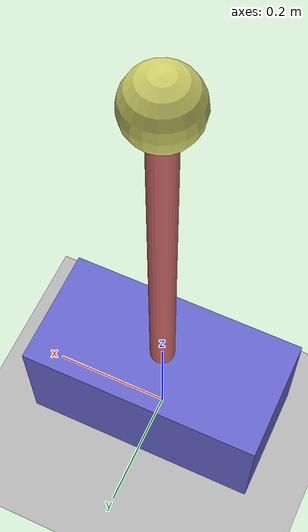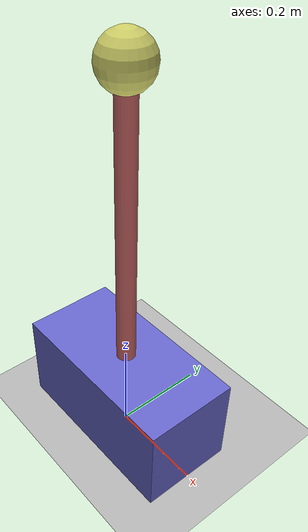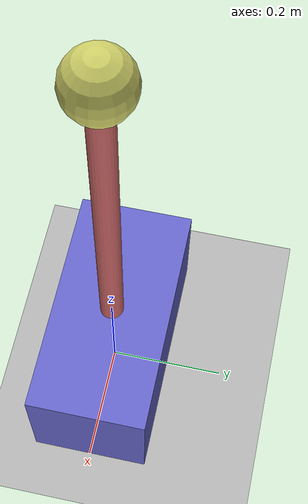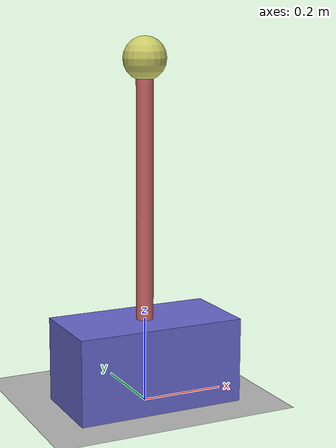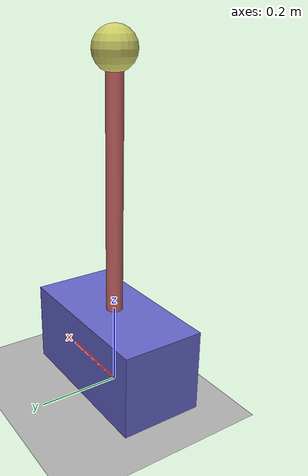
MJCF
<mujoco>
                <option gravity="0 0 -9.81" timestep="0.01"/>
                <default>
                    <joint damping="0.1"/>
                </default>
                <worldbody>
                    <body name="cart" pos="0 0 0.1">
                        <joint name="cart_slide" type="slide" axis="1 0 0" range="-2 2"/>
                        <geom name="cart_body" type="box" size="0.2 0.1 0.1"
                              mass="1.5" rgba="0.4 0.4 0.8 1"/>
                        <body name="pole" pos="0 0 0.1">
                            <joint name="pole_hinge" type="hinge" axis="0 1 0"/>
                            <geom name="pole_rod" type="cylinder" size="0.02 0.3"
                                  pos="0 0 0.3" mass="0.2" rgba="0.8 0.4 0.4 1"/>
                            <geom name="pole_tip" type="sphere" size="0.05"
                                  pos="0 0 0.6" mass="0.05" rgba="0.8 0.8 0.4 1"/>
                        </body>
                    </body>
                    <geom name="ground" type="plane" size="5 5 0.1" rgba="0.7 0.7 0.7 1"/>
                </worldbody>
                <actuator>
                    <motor joint="cart_slide" gear="100"/>
                </actuator>
            </mujoco>
